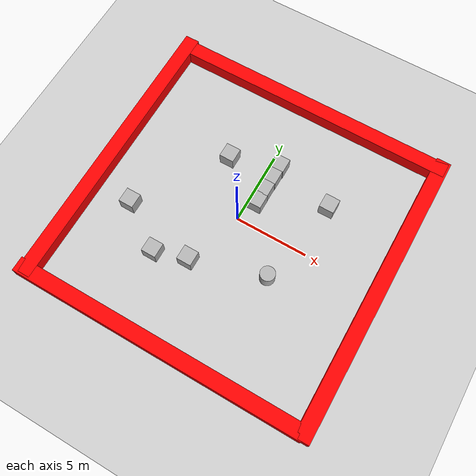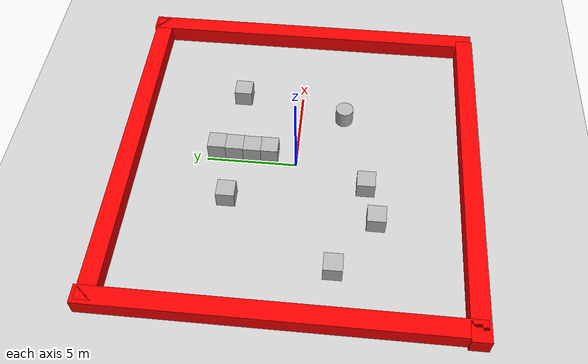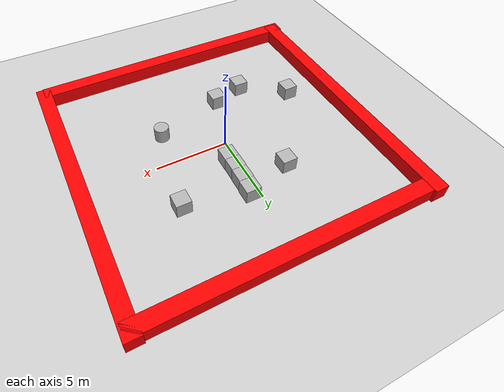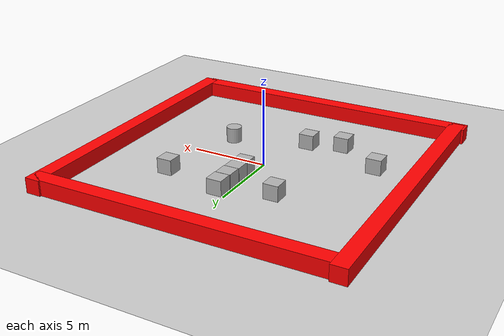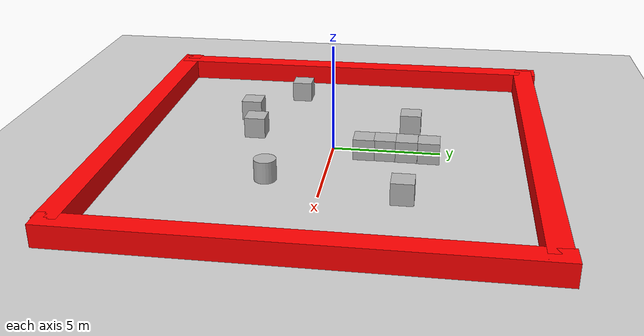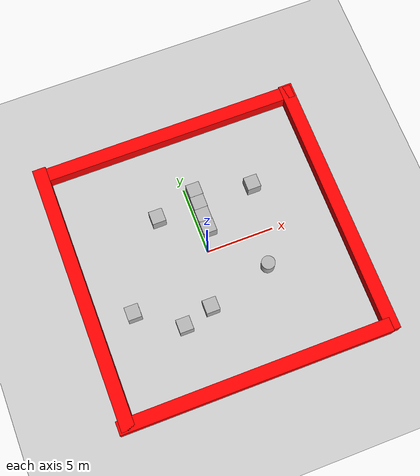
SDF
<sdf version="1.6">
 <world name="default">
  <plugin name="ignition::gazebo::systems::Physics" filename="libignition-gazebo-physics-system"/>
  <plugin name="ignition::gazebo::systems::UserCommands" filename="libignition-gazebo-user-commands-system"/>
  <plugin name="ignition::gazebo::systems::SceneBroadcaster" filename="libignition-gazebo-scene-broadcaster-system"/>
  <plugin name="ignition::gazebo::systems::Sensors" filename="libignition-gazebo-sensors-system">
   <render_engine>ogre2</render_engine>
  </plugin>
  <plugin name="ignition::gazebo::systems::Imu" filename="libignition-gazebo-imu-system"/>
  <gravity>0 0 -9.8</gravity>
  <magnetic_field>6e-06 2.3e-05 -4.2e-05</magnetic_field>
  <atmosphere type="adiabatic"/>
  <scene><shadows>false</shadows><ambient>0.4 0.4 0.4 1</ambient><background>0.7 0.7 0.7 1</background></scene>
  <physics type="ode">
   <real_time_update_rate>1000</real_time_update_rate>
   <max_step_size>0.001</max_step_size>
   <real_time_factor>1</real_time_factor>
   <ode>
    <solver>
     <type>quick</type>
     <iters>150</iters>
     <precon_iters>0</precon_iters>
     <sor>1.3999999999999999</sor>
     <use_dynamic_moi_rescaling>true</use_dynamic_moi_rescaling>
    </solver>
    <constraints>
     <cfm>1.0000000000000001e-05</cfm>
     <erp>0.20000000000000001</erp>
     <contact_max_correcting_vel>2000</contact_max_correcting_vel>
     <contact_surface_layer>0.01</contact_surface_layer>
    </constraints>
   </ode>
  </physics>
  <model name="ground_plane">
   <static>true</static>
   <link name="link">
    <collision name="collision">
     <geometry><plane><normal>0 0 1</normal><size>100 100</size></plane></geometry>
     <surface><friction><ode><mu>1</mu><mu2>1</mu2></ode></friction></surface>
    </collision>
    <visual name="visual">
     <geometry><plane><normal>0 0 1</normal><size>100 100</size></plane></geometry>
     <material>
      <ambient>0.8 0.8 0.8 1</ambient>
      <diffuse>0.8 0.8 0.8 1</diffuse>
      <specular>0.8 0.8 0.8 1</specular>
     </material>
    </visual>
    <inertial>
     <mass>1</mass>
     <inertia><ixx>1</ixx><ixy>0</ixy><ixz>0</ixz><iyy>1</iyy><iyz>0</iyz><izz>1</izz></inertia>
    </inertial>
   </link>
  </model>
  <model name="box">
   <pose>-2.56267 3.50524 0.5 0 -0 0</pose>
   <link name="box_link">
    <inertial>
     <inertia><ixx>0.16666</ixx><ixy>0</ixy><ixz>0</ixz><iyy>0.16666</iyy><iyz>0</iyz><izz>0.16666</izz></inertia>
     <mass>1</mass>
    </inertial>
    <collision name="box_collision"><geometry><box><size>1 1 1</size></box></geometry></collision>
    <visual name="box_visual">
     <geometry><box><size>1 1 1</size></box></geometry>
     <material>
      <ambient>0.3 0.3 0.3 1</ambient>
      <diffuse>0.7 0.7 0.7 1</diffuse>
      <specular>1 1 1 1</specular>
     </material>
    </visual>
   </link>
   <static>false</static>
  </model>
  <model name="box_3">
   <pose>-3.4498 -4.59259 0.5 0 -0 0</pose>
   <link name="box_link">
    <inertial>
     <inertia><ixx>0.16666</ixx><ixy>0</ixy><ixz>0</ixz><iyy>0.16666</iyy><iyz>0</iyz><izz>0.16666</izz></inertia>
     <mass>1</mass>
    </inertial>
    <collision name="box_collision"><geometry><box><size>1 1 1</size></box></geometry></collision>
    <visual name="box_visual">
     <geometry><box><size>1 1 1</size></box></geometry>
     <material>
      <ambient>0.3 0.3 0.3 1</ambient>
      <diffuse>0.7 0.7 0.7 1</diffuse>
      <specular>1 1 1 1</specular>
     </material>
    </visual>
   </link>
   <static>false</static>
  </model>
  <model name="box_5">
   <pose>-1.26017 -3.95825 0.5 0 -0 0</pose>
   <link name="box_link">
    <inertial>
     <inertia><ixx>0.16666</ixx><ixy>0</ixy><ixz>0</ixz><iyy>0.16666</iyy><iyz>0</iyz><izz>0.16666</izz></inertia>
     <mass>1</mass>
    </inertial>
    <collision name="box_collision"><geometry><box><size>1 1 1</size></box></geometry></collision>
    <visual name="box_visual">
     <geometry><box><size>1 1 1</size></box></geometry>
     <material>
      <ambient>0.3 0.3 0.3 1</ambient>
      <diffuse>0.7 0.7 0.7 1</diffuse>
      <specular>1 1 1 1</specular>
     </material>
    </visual>
   </link>
   <static>false</static>
  </model>
  <model name="box_6">
   <pose>-6.50364 -2.50164 0.5 0 -0 0</pose>
   <link name="box_link">
    <inertial>
     <inertia><ixx>0.16666</ixx><ixy>0</ixy><ixz>0</ixz><iyy>0.16666</iyy><iyz>0</iyz><izz>0.16666</izz></inertia>
     <mass>1</mass>
    </inertial>
    <collision name="box_collision"><geometry><box><size>1 1 1</size></box></geometry></collision>
    <visual name="box_visual">
     <geometry><box><size>1 1 1</size></box></geometry>
     <material>
      <ambient>0.3 0.3 0.3 1</ambient>
      <diffuse>0.7 0.7 0.7 1</diffuse>
      <specular>1 1 1 1</specular>
     </material>
    </visual>
   </link>
   <static>false</static>
  </model>
  <model name="box_7">
   <pose>0.608198 3.47691 0.5 0 -0 0</pose>
   <link name="box_link">
    <inertial>
     <inertia><ixx>0.16666</ixx><ixy>0</ixy><ixz>0</ixz><iyy>0.16666</iyy><iyz>0</iyz><izz>0.16666</izz></inertia>
     <mass>1</mass>
    </inertial>
    <collision name="box_collision"><geometry><box><size>1 1 1</size></box></geometry></collision>
    <visual name="box_visual">
     <geometry><box><size>1 1 1</size></box></geometry>
     <material>
      <ambient>0.3 0.3 0.3 1</ambient>
      <diffuse>0.7 0.7 0.7 1</diffuse>
      <specular>1 1 1 1</specular>
     </material>
    </visual>
   </link>
   <static>false</static>
  </model>
  <model name="box_8">
   <pose>0.582316 2.48604 0.5 0 -0 0</pose>
   <link name="box_link">
    <inertial>
     <inertia><ixx>0.16666</ixx><ixy>0</ixy><ixz>0</ixz><iyy>0.16666</iyy><iyz>0</iyz><izz>0.16666</izz></inertia>
     <mass>1</mass>
    </inertial>
    <collision name="box_collision"><geometry><box><size>1 1 1</size></box></geometry></collision>
    <visual name="box_visual">
     <geometry><box><size>1 1 1</size></box></geometry>
     <material>
      <ambient>0.3 0.3 0.3 1</ambient>
      <diffuse>0.7 0.7 0.7 1</diffuse>
      <specular>1 1 1 1</specular>
     </material>
    </visual>
   </link>
   <static>false</static>
  </model>
  <model name="box_9">
   <pose>0.593074 1.53213 0.5 0 -0 0</pose>
   <link name="box_link">
    <inertial>
     <inertia><ixx>0.16666</ixx><ixy>0</ixy><ixz>0</ixz><iyy>0.16666</iyy><iyz>0</iyz><izz>0.16666</izz></inertia>
     <mass>1</mass>
    </inertial>
    <collision name="box_collision"><geometry><box><size>1 1 1</size></box></geometry></collision>
    <visual name="box_visual">
     <geometry><box><size>1 1 1</size></box></geometry>
     <material>
      <ambient>0.3 0.3 0.3 1</ambient>
      <diffuse>0.7 0.7 0.7 1</diffuse>
      <specular>1 1 1 1</specular>
     </material>
    </visual>
   </link>
   <static>false</static>
  </model>
  <model name="box_10">
   <pose>0.639272 4.47982 0.5 0 -0 0</pose>
   <link name="box_link">
    <inertial>
     <inertia><ixx>0.16666</ixx><ixy>0</ixy><ixz>0</ixz><iyy>0.16666</iyy><iyz>0</iyz><izz>0.16666</izz></inertia>
     <mass>1</mass>
    </inertial>
    <collision name="box_collision"><geometry><box><size>1 1 1</size></box></geometry></collision>
    <visual name="box_visual">
     <geometry><box><size>1 1 1</size></box></geometry>
     <material>
      <ambient>0.3 0.3 0.3 1</ambient>
      <diffuse>0.7 0.7 0.7 1</diffuse>
      <specular>1 1 1 1</specular>
     </material>
    </visual>
   </link>
   <static>false</static>
  </model>
  <model name="box_11">
   <pose>4.77324 3.5341 0.5 0 -0 0</pose>
   <link name="box_link">
    <inertial>
     <inertia><ixx>0.16666</ixx><ixy>0</ixy><ixz>0</ixz><iyy>0.16666</iyy><iyz>0</iyz><izz>0.16666</izz></inertia>
     <mass>1</mass>
    </inertial>
    <collision name="box_collision"><geometry><box><size>1 1 1</size></box></geometry></collision>
    <visual name="box_visual">
     <geometry><box><size>1 1 1</size></box></geometry>
     <material>
      <ambient>0.3 0.3 0.3 1</ambient>
      <diffuse>0.7 0.7 0.7 1</diffuse>
      <specular>1 1 1 1</specular>
     </material>
    </visual>
   </link>
   <static>false</static>
  </model>
  <model name="cylinder">
   <pose>3.60393 -2.51681 0.5 0 -0 0</pose>
   <link name="cylinder_link">
    <inertial>
     <inertia>
      <ixx>0.14580000000000001</ixx>
      <ixy>0</ixy>
      <ixz>0</ixz>
      <iyy>0.14580000000000001</iyy>
      <iyz>0</iyz>
      <izz>0.125</izz>
     </inertia>
     <mass>1</mass>
    </inertial>
    <collision name="cylinder_collision">
     <geometry><cylinder><radius>0.5</radius><length>1</length></cylinder></geometry>
    </collision>
    <visual name="cylinder_visual">
     <geometry><cylinder><radius>0.5</radius><length>1</length></cylinder></geometry>
     <material>
      <ambient>0.3 0.3 0.3 1</ambient>
      <diffuse>0.7 0.7 0.7 1</diffuse>
      <specular>1 1 1 1</specular>
     </material>
    </visual>
   </link>
   <static>false</static>
  </model>
  <model name="simple_cube">
   <pose>-9.41774 0 0.5 0 -0 0</pose>
   <link name="link">
    <inertial>
     <mass>1</mass>
     <inertia>
      <ixx>0.083000000000000004</ixx>
      <iyy>0.083000000000000004</iyy>
      <izz>0.083000000000000004</izz>
      <ixy>0</ixy>
      <ixz>0</ixz>
      <iyz>0</iyz>
     </inertia>
    </inertial>
    <collision name="collision"><geometry><box><size>1 20 1</size></box></geometry></collision>
    <visual name="visual">
     <geometry><box><size>1 20 1</size></box></geometry>
     <material><ambient>1 0 0 1</ambient><diffuse>1 0 0 1</diffuse></material>
    </visual>
   </link>
   <static>false</static>
  </model>
  <model name="simple_cube_1">
   <pose>9.92853 -0.070058 0.5 0 -0 0</pose>
   <link name="link">
    <inertial>
     <mass>1</mass>
     <inertia>
      <ixx>0.083000000000000004</ixx>
      <iyy>0.083000000000000004</iyy>
      <izz>0.083000000000000004</izz>
      <ixy>0</ixy>
      <ixz>0</ixz>
      <iyz>0</iyz>
     </inertia>
    </inertial>
    <collision name="collision"><geometry><box><size>1 20 1</size></box></geometry></collision>
    <visual name="visual">
     <geometry><box><size>1 20 1</size></box></geometry>
     <material><ambient>1 0 0 1</ambient><diffuse>1 0 0 1</diffuse></material>
    </visual>
   </link>
   <static>false</static>
  </model>
  <model name="simple_cube_2">
   <pose>-0.075654 -9.6336 0.5 0 0 -1.5708</pose>
   <link name="link">
    <inertial>
     <mass>1</mass>
     <inertia>
      <ixx>0.083000000000000004</ixx>
      <iyy>0.083000000000000004</iyy>
      <izz>0.083000000000000004</izz>
      <ixy>0</ixy>
      <ixz>0</ixz>
      <iyz>0</iyz>
     </inertia>
    </inertial>
    <collision name="collision"><geometry><box><size>1 20 1</size></box></geometry></collision>
    <visual name="visual">
     <geometry><box><size>1 20 1</size></box></geometry>
     <material><ambient>1 0 0 1</ambient><diffuse>1 0 0 1</diffuse></material>
    </visual>
   </link>
   <static>false</static>
  </model>
  <model name="simple_cube_3">
   <pose>0.300505 9.32822 0.5 0 -0 1.5708</pose>
   <link name="link">
    <inertial>
     <mass>1</mass>
     <inertia>
      <ixx>0.083000000000000004</ixx>
      <iyy>0.083000000000000004</iyy>
      <izz>0.083000000000000004</izz>
      <ixy>0</ixy>
      <ixz>0</ixz>
      <iyz>0</iyz>
     </inertia>
    </inertial>
    <collision name="collision"><geometry><box><size>1 20 1</size></box></geometry></collision>
    <visual name="visual">
     <geometry><box><size>1 20 1</size></box></geometry>
     <material><ambient>1 0 0 1</ambient><diffuse>1 0 0 1</diffuse></material>
    </visual>
   </link>
   <static>false</static>
  </model>
  <light name="sun" type="directional">
   <pose>0 0 10 0 -0 0</pose>
   <intensity>1</intensity>
   <direction>-0.5 0.1 -0.9</direction>
   <diffuse>0.8 0.8 0.8 1</diffuse>
   <specular>0.2 0.2 0.2 1</specular>
   <attenuation>
    <range>1000</range>
    <linear>0.01</linear>
    <constant>0.90000000000000002</constant>
    <quadratic>0.001</quadratic>
   </attenuation>
   <spot><inner_angle>0</inner_angle><outer_angle>0</outer_angle><falloff>0</falloff></spot>
  </light>
 </world>
</sdf>
